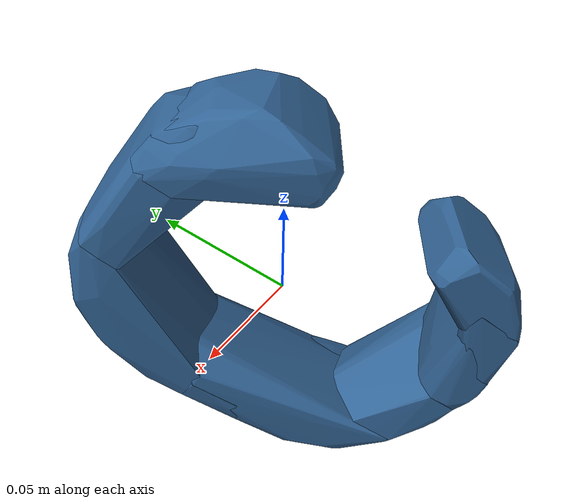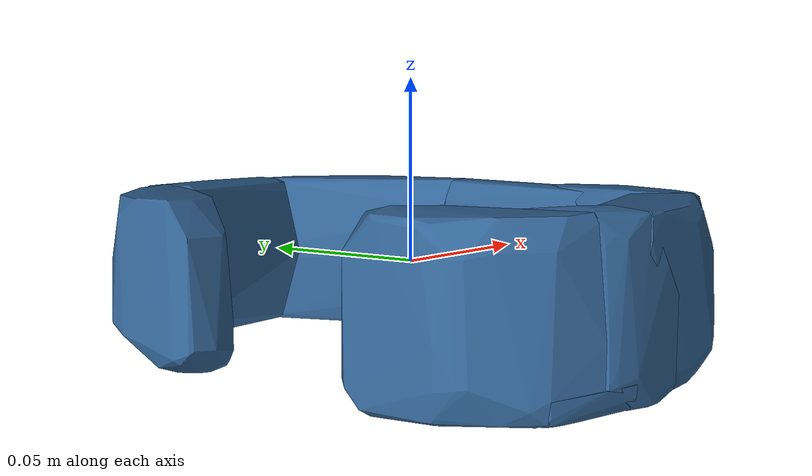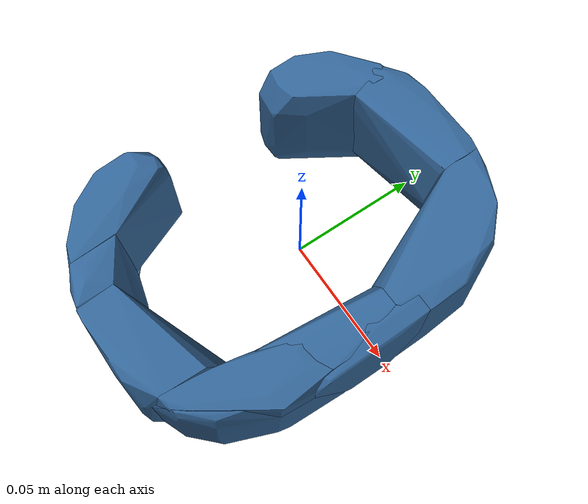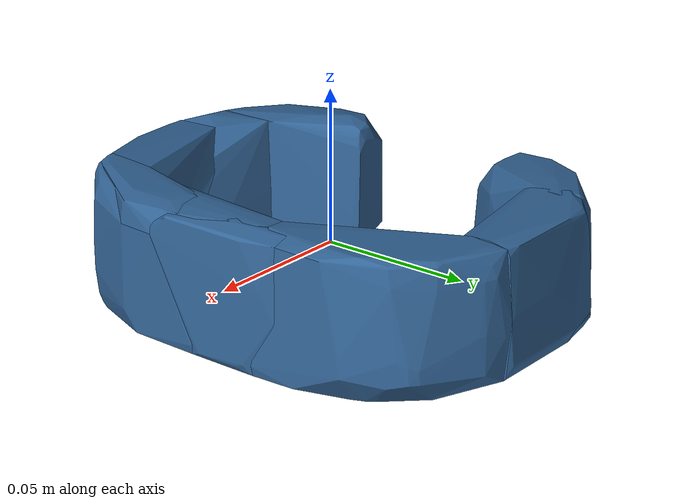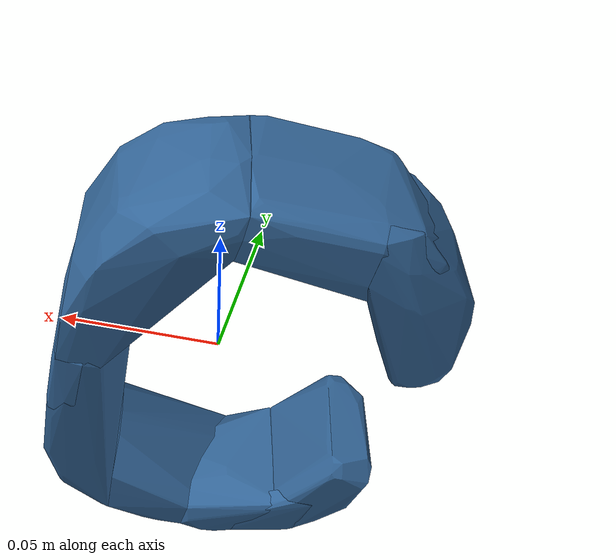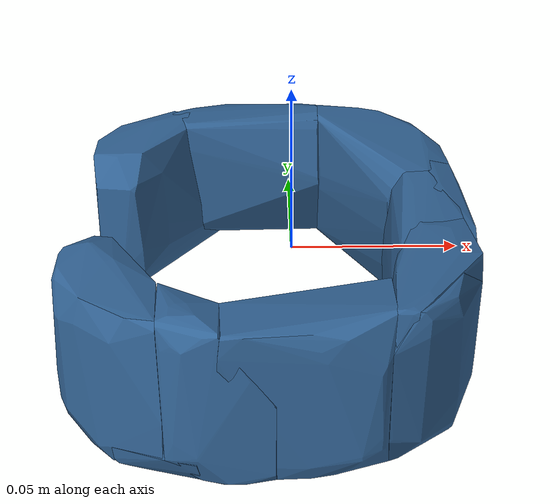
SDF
<?xml version='1.0' encoding='UTF-8'?>
<!-- This SDF was autogenerated by obj_to_drake_sdf.py -->
<sdf version="1.7">
  <model name="C_shape_new">
    <link name="C_shape_new">
      <inertial>
        <pose>0 0 0 0 0 0</pose>
        <mass>0.05</mass>
        <inertia>
          <ixx>0.00014467754</ixx>
          <iyy>7.401121e-05</iyy>
          <izz>0.00020381547</izz>
          <ixy>1.3198199e-06</ixy>
          <ixz>-4.1010912e-07</ixz>
          <iyz>-9.7631457e-07</iyz>
        </inertia>
      </inertial>
      <visual name="convex_0">
        <pose>0 0 0 0 0 0</pose>
        <geometry>
          <mesh>
            <uri>C_shape_new_convex_0.obj</uri>
          </mesh>
        </geometry>
        <material>
          <diffuse>0.19607843137254902 0.39215686274509803 0.5882352941176471 1</diffuse>
        </material>
      </visual>
      <collision name="convex_0_volume">
        <pose>0 0 0 0 0 0</pose>
        <geometry>
          <mesh>
            <uri>C_shape_new_convex_0.obj</uri>
          </mesh>
        </geometry>
        <drake:proximity_properties xmlns:drake="uri:drake">
          <drake:compliant_hydroelastic/>
          <drake:hydroelastic_modulus> 3.0e7 </drake:hydroelastic_modulus>
          <drake:mesh_resolution_hint> 0.02 </drake:mesh_resolution_hint>
          <drake:hunt_crossley_dissipation>10</drake:hunt_crossley_dissipation>
          <drake:mu_dynamic>0.3</drake:mu_dynamic>
        </drake:proximity_properties>
      </collision>
      <visual name="convex_1">
        <pose>0 0 0 0 0 0</pose>
        <geometry>
          <mesh>
            <uri>C_shape_new_convex_1.obj</uri>
          </mesh>
        </geometry>
        <material>
          <diffuse>0.19607843137254902 0.39215686274509803 0.5882352941176471 1</diffuse>
        </material>
      </visual>
      <collision name="convex_1_volume">
        <pose>0 0 0 0 0 0</pose>
        <geometry>
          <mesh>
            <uri>C_shape_new_convex_1.obj</uri>
          </mesh>
        </geometry>
        <drake:proximity_properties xmlns:drake="uri:drake">
          <drake:compliant_hydroelastic/>
          <drake:hydroelastic_modulus> 3.0e7 </drake:hydroelastic_modulus>
          <drake:mesh_resolution_hint> 0.02 </drake:mesh_resolution_hint>
          <drake:hunt_crossley_dissipation>10</drake:hunt_crossley_dissipation>
          <drake:mu_dynamic>0.3</drake:mu_dynamic>
        </drake:proximity_properties>
      </collision>
      <visual name="convex_2">
        <pose>0 0 0 0 0 0</pose>
        <geometry>
          <mesh>
            <uri>C_shape_new_convex_2.obj</uri>
          </mesh>
        </geometry>
        <material>
          <diffuse>0.19607843137254902 0.39215686274509803 0.5882352941176471 1</diffuse>
        </material>
      </visual>
      <collision name="convex_2_volume">
        <pose>0 0 0 0 0 0</pose>
        <geometry>
          <mesh>
            <uri>C_shape_new_convex_2.obj</uri>
          </mesh>
        </geometry>
        <drake:proximity_properties xmlns:drake="uri:drake">
          <drake:compliant_hydroelastic/>
          <drake:hydroelastic_modulus> 3.0e7 </drake:hydroelastic_modulus>
          <drake:mesh_resolution_hint> 0.02 </drake:mesh_resolution_hint>
          <drake:hunt_crossley_dissipation>10</drake:hunt_crossley_dissipation>
          <drake:mu_dynamic>0.3</drake:mu_dynamic>
        </drake:proximity_properties>
      </collision>
      <visual name="convex_3">
        <pose>0 0 0 0 0 0</pose>
        <geometry>
          <mesh>
            <uri>C_shape_new_convex_3.obj</uri>
          </mesh>
        </geometry>
        <material>
          <diffuse>0.19607843137254902 0.39215686274509803 0.5882352941176471 1</diffuse>
        </material>
      </visual>
      <collision name="convex_3_volume">
        <pose>0 0 0 0 0 0</pose>
        <geometry>
          <mesh>
            <uri>C_shape_new_convex_3.obj</uri>
          </mesh>
        </geometry>
        <drake:proximity_properties xmlns:drake="uri:drake">
          <drake:compliant_hydroelastic/>
          <drake:hydroelastic_modulus> 3.0e7 </drake:hydroelastic_modulus>
          <drake:mesh_resolution_hint> 0.02 </drake:mesh_resolution_hint>
          <drake:hunt_crossley_dissipation>10</drake:hunt_crossley_dissipation>
          <drake:mu_dynamic>0.3</drake:mu_dynamic>
        </drake:proximity_properties>
      </collision>
      <visual name="convex_4">
        <pose>0 0 0 0 0 0</pose>
        <geometry>
          <mesh>
            <uri>C_shape_new_convex_4.obj</uri>
          </mesh>
        </geometry>
        <material>
          <diffuse>0.19607843137254902 0.39215686274509803 0.5882352941176471 1</diffuse>
        </material>
      </visual>
      <collision name="convex_4_volume">
        <pose>0 0 0 0 0 0</pose>
        <geometry>
          <mesh>
            <uri>C_shape_new_convex_4.obj</uri>
          </mesh>
        </geometry>
        <drake:proximity_properties xmlns:drake="uri:drake">
          <drake:compliant_hydroelastic/>
          <drake:hydroelastic_modulus> 3.0e7 </drake:hydroelastic_modulus>
          <drake:mesh_resolution_hint> 0.02 </drake:mesh_resolution_hint>
          <drake:hunt_crossley_dissipation>10</drake:hunt_crossley_dissipation>
          <drake:mu_dynamic>0.3</drake:mu_dynamic>
        </drake:proximity_properties>
      </collision>
      <visual name="convex_5">
        <pose>0 0 0 0 0 0</pose>
        <geometry>
          <mesh>
            <uri>C_shape_new_convex_5.obj</uri>
          </mesh>
        </geometry>
        <material>
          <diffuse>0.19607843137254902 0.39215686274509803 0.5882352941176471 1</diffuse>
        </material>
      </visual>
      <collision name="convex_5_volume">
        <pose>0 0 0 0 0 0</pose>
        <geometry>
          <mesh>
            <uri>C_shape_new_convex_5.obj</uri>
          </mesh>
        </geometry>
        <drake:proximity_properties xmlns:drake="uri:drake">
          <drake:compliant_hydroelastic/>
          <drake:hydroelastic_modulus> 3.0e7 </drake:hydroelastic_modulus>
          <drake:mesh_resolution_hint> 0.02 </drake:mesh_resolution_hint>
          <drake:hunt_crossley_dissipation>10</drake:hunt_crossley_dissipation>
          <drake:mu_dynamic>0.3</drake:mu_dynamic>
        </drake:proximity_properties>
      </collision>
      <visual name="convex_6">
        <pose>0 0 0 0 0 0</pose>
        <geometry>
          <mesh>
            <uri>C_shape_new_convex_6.obj</uri>
          </mesh>
        </geometry>
        <material>
          <diffuse>0.19607843137254902 0.39215686274509803 0.5882352941176471 1</diffuse>
        </material>
      </visual>
      <collision name="convex_6_volume">
        <pose>0 0 0 0 0 0</pose>
        <geometry>
          <mesh>
            <uri>C_shape_new_convex_6.obj</uri>
          </mesh>
        </geometry>
        <drake:proximity_properties xmlns:drake="uri:drake">
          <drake:compliant_hydroelastic/>
          <drake:hydroelastic_modulus> 3.0e7 </drake:hydroelastic_modulus>
          <drake:mesh_resolution_hint> 0.02 </drake:mesh_resolution_hint>
          <drake:hunt_crossley_dissipation>10</drake:hunt_crossley_dissipation>
          <drake:mu_dynamic>0.3</drake:mu_dynamic>
        </drake:proximity_properties>
      </collision>
      <visual name="convex_7">
        <pose>0 0 0 0 0 0</pose>
        <geometry>
          <mesh>
            <uri>C_shape_new_convex_7.obj</uri>
          </mesh>
        </geometry>
        <material>
          <diffuse>0.19607843137254902 0.39215686274509803 0.5882352941176471 1</diffuse>
        </material>
      </visual>
      <collision name="convex_7_volume">
        <pose>0 0 0 0 0 0</pose>
        <geometry>
          <mesh>
            <uri>C_shape_new_convex_7.obj</uri>
          </mesh>
        </geometry>
        <drake:proximity_properties xmlns:drake="uri:drake">
          <drake:compliant_hydroelastic/>
          <drake:hydroelastic_modulus> 3.0e7 </drake:hydroelastic_modulus>
          <drake:mesh_resolution_hint> 0.02 </drake:mesh_resolution_hint>
          <drake:hunt_crossley_dissipation>10</drake:hunt_crossley_dissipation>
          <drake:mu_dynamic>0.3</drake:mu_dynamic>
        </drake:proximity_properties>
      </collision>
      <visual name="convex_8">
        <pose>0 0 0 0 0 0</pose>
        <geometry>
          <mesh>
            <uri>C_shape_new_convex_8.obj</uri>
          </mesh>
        </geometry>
        <material>
          <diffuse>0.19607843137254902 0.39215686274509803 0.5882352941176471 1</diffuse>
        </material>
      </visual>
      <collision name="convex_8_volume">
        <pose>0 0 0 0 0 0</pose>
        <geometry>
          <mesh>
            <uri>C_shape_new_convex_8.obj</uri>
          </mesh>
        </geometry>
        <drake:proximity_properties xmlns:drake="uri:drake">
          <drake:compliant_hydroelastic/>
          <drake:hydroelastic_modulus> 3.0e7 </drake:hydroelastic_modulus>
          <drake:mesh_resolution_hint> 0.02 </drake:mesh_resolution_hint>
          <drake:hunt_crossley_dissipation>10</drake:hunt_crossley_dissipation>
          <drake:mu_dynamic>0.3</drake:mu_dynamic>
        </drake:proximity_properties>
      </collision>
      <visual name="convex_9">
        <pose>0 0 0 0 0 0</pose>
        <geometry>
          <mesh>
            <uri>C_shape_new_convex_9.obj</uri>
          </mesh>
        </geometry>
        <material>
          <diffuse>0.19607843137254902 0.39215686274509803 0.5882352941176471 1</diffuse>
        </material>
      </visual>
      <collision name="convex_9_volume">
        <pose>0 0 0 0 0 0</pose>
        <geometry>
          <mesh>
            <uri>C_shape_new_convex_9.obj</uri>
          </mesh>
        </geometry>
        <drake:proximity_properties xmlns:drake="uri:drake">
          <drake:compliant_hydroelastic/>
          <drake:hydroelastic_modulus> 3.0e7 </drake:hydroelastic_modulus>
          <drake:mesh_resolution_hint> 0.02 </drake:mesh_resolution_hint>
          <drake:hunt_crossley_dissipation>10</drake:hunt_crossley_dissipation>
          <drake:mu_dynamic>0.3</drake:mu_dynamic>
        </drake:proximity_properties>
      </collision>
    </link>
  </model>
</sdf>
